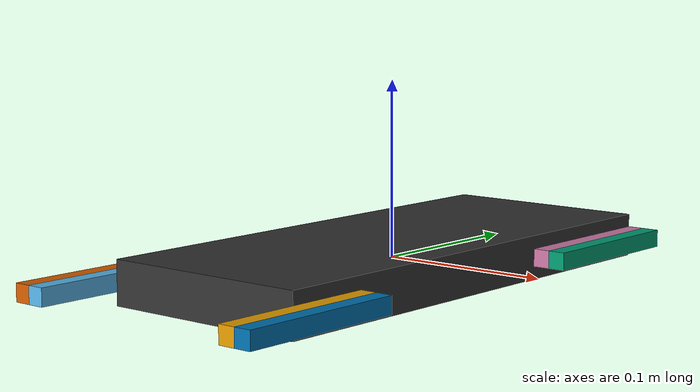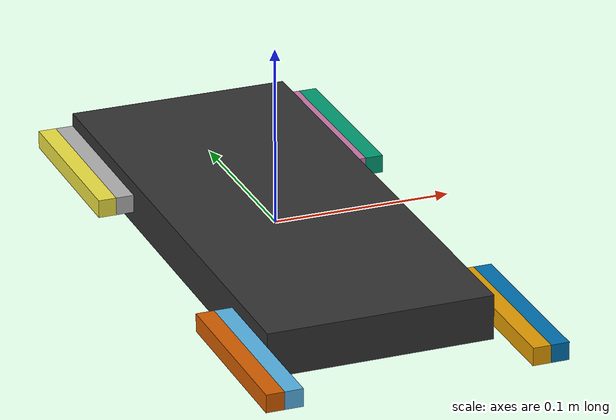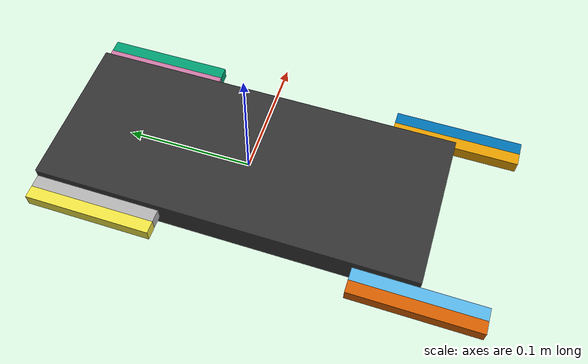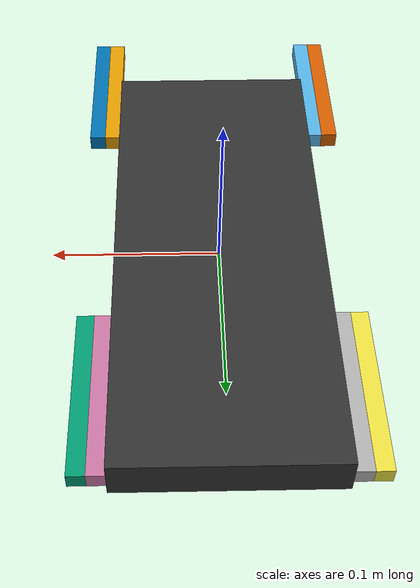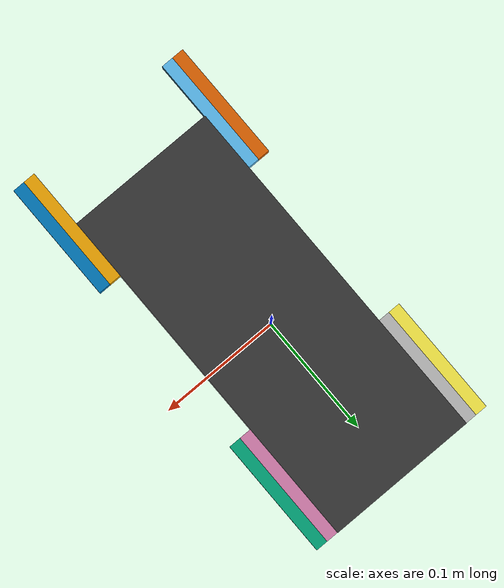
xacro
<?xml version="1.0" ?>

<robot name="jack" xmlns:xacro="www.github.com">
    <link name="dummy" />
    <joint name="dummy" type="fixed">
        <parent link="dummy" />
        <child link="base_link" />
        <origin rpy="0 0 0" xyz="0 0 0" />
    </joint>

    <link name="base_link">
        <visual>
            <origin rpy="0 0 0" xyz="0 0 0" />
            <geometry>
                <box size="0.125 0.3 0.025" />
            </geometry>
            <material name="Grey">
                <color rgba="0.20 0.20 0.20 1.0" />
            </material>
        </visual>
        <collision>
            <origin rpy="0 0 0" xyz="0 0 0" />
            <geometry>
                <box size="0.125 0.3 0.025" />
            </geometry>
        </collision>
        <inertial>
            <origin rpy="0 0 0" xyz="0 0 0" />
            <mass value="1.5" />
            <inertia ixx="0.011328125" ixy="0.0" ixz="0.0" iyy="0.00203125" iyz="0.0" izz="0.013203125" />
        </inertial>
    </link>

    <gazebo reference="base_link">
        <mu1 value="2000.0" />
        <mu2 value="1000.0" />
        <kp value="1000000" />
        <kd value="1.0" />
    </gazebo>

    <joint name="frbase_coxa" type="revolute">
        <axis xyz="1 0 0" />
        <limit effort="1000.0" lower="0" upper="3.14" velocity="0.5" />
        <origin rpy="0 0 0" xyz="0.0775 0.15 0" />
        <parent link="base_link" />
        <child link="fr_coxa" />
    </joint>
    <transmission name="t_frbase_coxa">
        <type>transmission_interface/SimpleTransmission</type>
        <joint name="frbase_coxa">
            <hardwareInterface>hardware_interface/EffortJointInterface</hardwareInterface>
        </joint>
        <actuator name="m_frbase_coxa">
            <hardwareInterface>hardware_interface/EffortJointInterface</hardwareInterface>
            <mechanicalReduction>1</mechanicalReduction>
        </actuator>
    </transmission>

    <link name="fr_coxa">
        <visual>
            <origin rpy="0 0 0" xyz="0 -0.05 0" />
            <geometry>
                <box size="0.01 0.1 0.01" />
            </geometry>
        </visual>
        <collision>
            <origin rpy="0 0 0" xyz="0 -0.05 0" />
            <geometry>
                <box size="0.01 0.1 0.01" />
            </geometry>
        </collision>
        <inertial>
            <mass value="0.1" />
            <origin rpy="0 0 0" xyz="0 -0.05 0" />
            <inertia ixx="0.00008416666" ixy="0.0" ixz="0.0" iyy="0.00000166666" iyz="0.0" izz="0.00008416666" />
        </inertial>
    </link>
    <gazebo reference="fr_coxa">
        <mu1 value="2000.0"/>
        <mu2 value="1000.0"/>
        <kp value="1000000" />
        <kd value="1.0" />
        <selfCollide value="true" />
      </gazebo>

    <joint name="flbase_coxa" type="revolute">
        <axis xyz="1 0 0" />
        <limit effort="1000.0" lower="0" upper="3.14" velocity="0.5" />
        <origin rpy="0 0 0" xyz="-0.0775 0.15 0" />
        <parent link="base_link" />
        <child link="fl_coxa" />
    </joint>
    <transmission name="t_flbase_coxa">
        <type>transmission_interface/SimpleTransmission</type>
        <joint name="flbase_coxa">
            <hardwareInterface>hardware_interface/EffortJointInterface</hardwareInterface>
        </joint>
        <actuator name="m_flbase_coxa">
            <hardwareInterface>hardware_interface/EffortJointInterface</hardwareInterface>
            <mechanicalReduction>1</mechanicalReduction>
        </actuator>
    </transmission>

    <link name="fl_coxa">
        <visual>
            <origin rpy="0 0 0" xyz="0 -0.05 0" />
            <geometry>
                <box size="0.01 0.1 0.01" />
            </geometry>
        </visual>
        <collision>
            <origin rpy="0 0 0" xyz="0 -0.05 0" />
            <geometry>
                <box size="0.01 0.1 0.01" />
            </geometry>
        </collision>
        <inertial>
            <mass value="0.1" />
            <origin rpy="0 0 0" xyz="0 -0.05 0" />
            <inertia ixx="0.00008416666" ixy="0.0" ixz="0.0" iyy="0.00000166666" iyz="0.0" izz="0.00008416666" />
        </inertial>
    </link>
    <gazebo reference="fl_coxa">
        <mu1 value="2000.0"/>
        <mu2 value="1000.0"/>
        <kp value="1000000" />
        <kd value="1.0" />
        <selfCollide value="true" />
      </gazebo>

    <joint name="brbase_coxa" type="revolute">
        <axis xyz="1 0 0" />
        <limit effort="1000.0" lower="0" upper="3.14" velocity="0.5" />
        <origin rpy="0 0 0" xyz="0.0775 -0.1 0" />
        <parent link="base_link" />
        <child link="br_coxa" />
    </joint>
    <transmission name="t_brbase_coxa">
        <type>transmission_interface/SimpleTransmission</type>
        <joint name="brbase_coxa">
            <hardwareInterface>hardware_interface/EffortJointInterface</hardwareInterface>
        </joint>
        <actuator name="m_brbase_coxa">
            <hardwareInterface>hardware_interface/EffortJointInterface</hardwareInterface>
            <mechanicalReduction>1</mechanicalReduction>
        </actuator>
    </transmission>

    <link name="br_coxa">
        <visual>
            <origin rpy="0 0 0" xyz="0 -0.05 0" />
            <geometry>
                <box size="0.01 0.1 0.01" />
            </geometry>
        </visual>
        <collision>
            <origin rpy="0 0 0" xyz="0 -0.05 0" />
            <geometry>
                <box size="0.01 0.1 0.01" />
            </geometry>
        </collision>
        <inertial>
            <mass value="0.1" />
            <origin rpy="0 0 0" xyz="0 -0.05 0" />
            <inertia ixx="0.00008416666" ixy="0.0" ixz="0.0" iyy="0.00000166666" iyz="0.0" izz="0.00008416666" />
        </inertial>
    </link>
    <gazebo reference="br_coxa">
        <mu1 value="2000.0"/>
        <mu2 value="1000.0"/>
        <kp value="1000000" />
        <kd value="1.0" />
        <selfCollide value="true" />
      </gazebo>

    <joint name="blbase_coxa" type="revolute">
        <axis xyz="1 0 0" />
        <limit effort="1000.0" lower="0" upper="3.14" velocity="0.5" />
        <origin rpy="0 0 0" xyz="-0.0775 -0.1 0" />
        <parent link="base_link" />
        <child link="bl_coxa" />
    </joint>
    <transmission name="t_blbase_coxa">
        <type>transmission_interface/SimpleTransmission</type>
        <joint name="blbase_coxa">
            <hardwareInterface>hardware_interface/EffortJointInterface</hardwareInterface>
        </joint>
        <actuator name="m_blbase_coxa">
            <hardwareInterface>hardware_interface/EffortJointInterface</hardwareInterface>
            <mechanicalReduction>1</mechanicalReduction>
        </actuator>
    </transmission>

    <link name="bl_coxa">
        <visual>
            <origin rpy="0 0 0" xyz="0 -0.05 0" />
            <geometry>
                <box size="0.01 0.1 0.01" />
            </geometry>
        </visual>
        <collision>
            <origin rpy="0 0 0" xyz="0 -0.05 0" />
            <geometry>
                <box size="0.01 0.1 0.01" />
            </geometry>
        </collision>
        <inertial>
            <mass value="0.1" />
            <origin rpy="0 0 0" xyz="0 -0.05 0" />
            <inertia ixx="0.00008416666" ixy="0.0" ixz="0.0" iyy="0.00000166666" iyz="0.0" izz="0.00008416666" />
        </inertial>
    </link>
    <gazebo reference="bl_coxa">
        <mu1 value="2000.0"/>
        <mu2 value="1000.0"/>
        <kp value="1000000" />
        <kd value="1.0" />
        <selfCollide value="true" />
      </gazebo>

    <joint name="frcoxa_tibia" type="revolute">
        <axis xyz="1 0 0" />
        <limit effort="1000.0" lower="-3.14" upper="3.14" velocity="0.5" />
        <origin rpy="0 0 0" xyz="-0.01 -0.1 0" />
        <parent link="fr_coxa" />
        <child link="fr_tibia" />
    </joint>
    <transmission name="t_frcoxa_tibia">
        <type>transmission_interface/SimpleTransmission</type>
        <joint name="frcoxa_tibia">
            <hardwareInterface>hardware_interface/EffortJointInterface</hardwareInterface>
        </joint>
        <actuator name="m_frcoxa_tibia">
            <hardwareInterface>hardware_interface/EffortJointInterface</hardwareInterface>
            <mechanicalReduction>1</mechanicalReduction>
        </actuator>
    </transmission>

    <link name="fr_tibia">
        <visual>
            <origin rpy="0 0 0" xyz="0 0.05 0" />
            <geometry>
                <box size="0.01 0.1 0.01" />
            </geometry>
        </visual>
        <collision>
            <origin rpy="0 0 0" xyz="0 0.05 0" />
            <geometry>
                <box size="0.01 0.1 0.01" />
            </geometry>
        </collision>
        <inertial>
            <mass value="0.1" />
            <origin rpy="0 0 0" xyz="0 0.05 0" />
            <inertia ixx="0.00008416666" ixy="0.0" ixz="0.0" iyy="0.00000166666" iyz="0.0" izz="0.00008416666" />
        </inertial>
    </link>
    <gazebo reference="fr_tibia">
        <mu1 value="2000.0"/>
        <mu2 value="1000.0"/>
        <kp value="1000000" />
        <kd value="1.0" />
        <selfCollide value="true" />
      </gazebo>

    <joint name="flcoxa_tibia" type="revolute">
        <axis xyz="1 0 0" />
        <limit effort="1000.0" lower="-3.14" upper="3.14" velocity="0.5" />
        <origin rpy="0 0 0" xyz="0.01 -0.1 0" />
        <parent link="fl_coxa" />
        <child link="fl_tibia" />
    </joint>
    <transmission name="t_flcoxa_tibia">
        <type>transmission_interface/SimpleTransmission</type>
        <joint name="flcoxa_tibia">
            <hardwareInterface>hardware_interface/EffortJointInterface</hardwareInterface>
        </joint>
        <actuator name="m_flcoxa_tibia">
            <hardwareInterface>hardware_interface/EffortJointInterface</hardwareInterface>
            <mechanicalReduction>1</mechanicalReduction>
        </actuator>
    </transmission>

    <link name="fl_tibia">
        <visual>
            <origin rpy="0 0 0" xyz="0 0.05 0" />
            <geometry>
                <box size="0.01 0.1 0.01" />
            </geometry>
        </visual>
        <collision>
            <origin rpy="0 0 0" xyz="0 0.05 0" />
            <geometry>
                <box size="0.01 0.1 0.01" />
            </geometry>
        </collision>
        <inertial>
            <mass value="0.1" />
            <origin rpy="0 0 0" xyz="0 0.05 0" />
            <inertia ixx="0.00008416666" ixy="0.0" ixz="0.0" iyy="0.00000166666" iyz="0.0" izz="0.00008416666" />
        </inertial>
    </link>
    <gazebo reference="fl_tibia">
        <mu1 value="2000.0"/>
        <mu2 value="1000.0"/>
        <kp value="1000000" />
        <kd value="1.0" />
        <selfCollide value="true" />
      </gazebo>

    <joint name="brcoxa_tibia" type="revolute">
        <axis xyz="1 0 0" />
        <limit effort="1000.0" lower="-3.14" upper="3.14" velocity="0.5" />
        <origin rpy="0 0 0" xyz="-0.01 -0.1 0" />
        <parent link="br_coxa" />
        <child link="br_tibia" />
    </joint>
    <transmission name="t_brcoxa_tibia">
        <type>transmission_interface/SimpleTransmission</type>
        <joint name="brcoxa_tibia">
            <hardwareInterface>hardware_interface/EffortJointInterface</hardwareInterface>
        </joint>
        <actuator name="m_brcoxa_tibia">
            <hardwareInterface>hardware_interface/EffortJointInterface</hardwareInterface>
            <mechanicalReduction>1</mechanicalReduction>
        </actuator>
    </transmission>

    <link name="br_tibia">
        <visual>
            <origin rpy="0 0 0" xyz="0 0.05 0" />
            <geometry>
                <box size="0.01 0.1 0.01" />
            </geometry>
        </visual>
        <collision>
            <origin rpy="0 0 0" xyz="0 0.05 0" />
            <geometry>
                <box size="0.01 0.1 0.01" />
            </geometry>
        </collision>
        <inertial>
            <mass value="0.1" />
            <origin rpy="0 0 0" xyz="0 0.05 0" />
            <inertia ixx="0.00008416666" ixy="0.0" ixz="0.0" iyy="0.00000166666" iyz="0.0" izz="0.00008416666" />
        </inertial>
    </link>
    <gazebo reference="br_tibia">
        <mu1 value="2000.0"/>
        <mu2 value="1000.0"/>
        <kp value="1000000" />
        <kd value="1.0" />
        <selfCollide value="true" />
      </gazebo>

    <joint name="blcoxa_tibia" type="revolute">
        <axis xyz="1 0 0" />
        <limit effort="1000.0" lower="-3.14" upper="3.14" velocity="0.5" />
        <origin rpy="0 0 0" xyz="0.01 -0.1 0" />
        <parent link="bl_coxa" />
        <child link="bl_tibia" />
    </joint>
    <transmission name="t_blcoxa_tibia">
        <type>transmission_interface/SimpleTransmission</type>
        <joint name="blcoxa_tibia">
            <hardwareInterface>hardware_interface/EffortJointInterface</hardwareInterface>
        </joint>
        <actuator name="m_blcoxa_tibia">
            <hardwareInterface>hardware_interface/EffortJointInterface</hardwareInterface>
            <mechanicalReduction>1</mechanicalReduction>
        </actuator>
    </transmission>

    <link name="bl_tibia">
        <visual>
            <origin rpy="0 0 0" xyz="0 0.05 0" />
            <geometry>
                <box size="0.01 0.1 0.01" />
            </geometry>
        </visual>
        <collision>
            <origin rpy="0 0 0" xyz="0 0.05 0" />
            <geometry>
                <box size="0.01 0.1 0.01" />
            </geometry>
        </collision>
        <inertial>
            <mass value="0.1" />
            <origin rpy="0 0 0" xyz="0 0.05 0" />
            <inertia ixx="0.00008416666" ixy="0.0" ixz="0.0" iyy="0.00000166666" iyz="0.0" izz="0.00008416666" />
        </inertial>
    </link>
    <gazebo reference="bl_tibia">
        <mu1 value="2000.0"/>
        <mu2 value="1000.0"/>
        <kp value="1000000" />
        <kd value="1.0" />
        <selfCollide value="true" />
      </gazebo>

    <gazebo>
        <plugin filename="libgazebo_ros_control.so" name="gazebo_ros_control">
            <robotNamespace>/jack</robotNamespace>
            <robotSimType>gazebo_ros_control/DefaultRobotHWSim</robotSimType>
        </plugin>
    </gazebo>

</robot>
